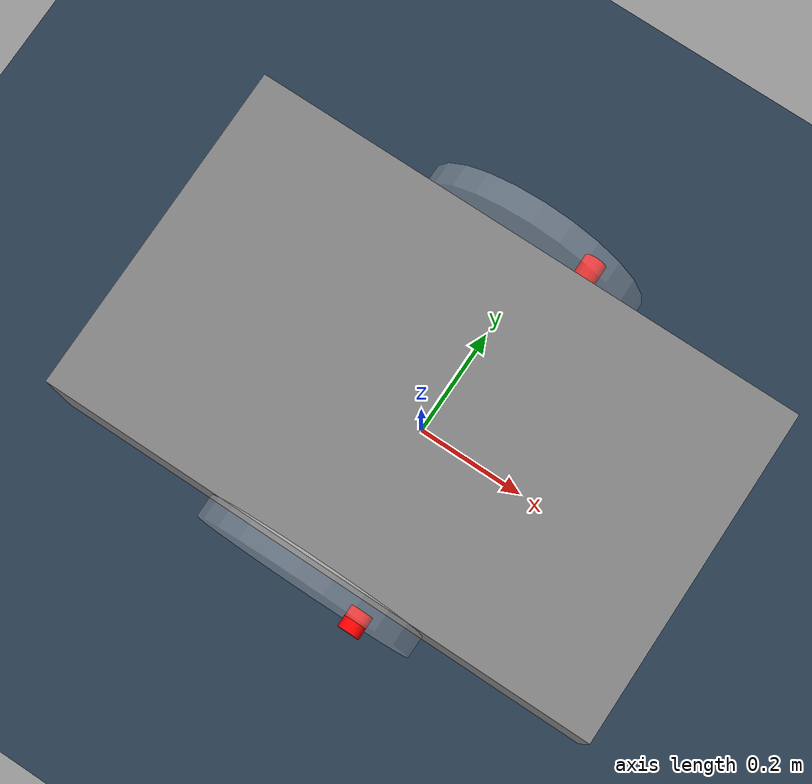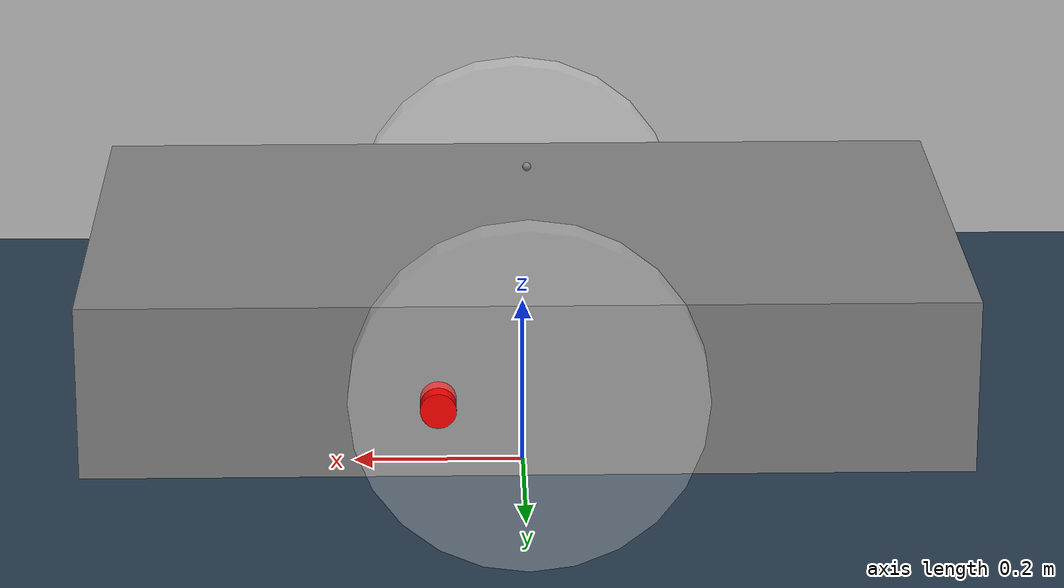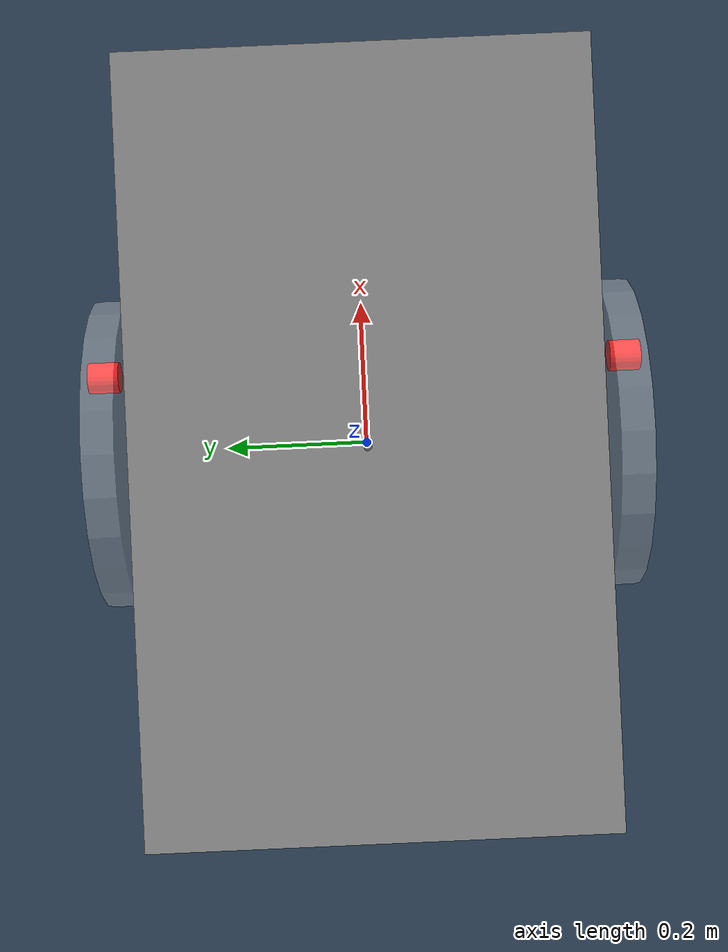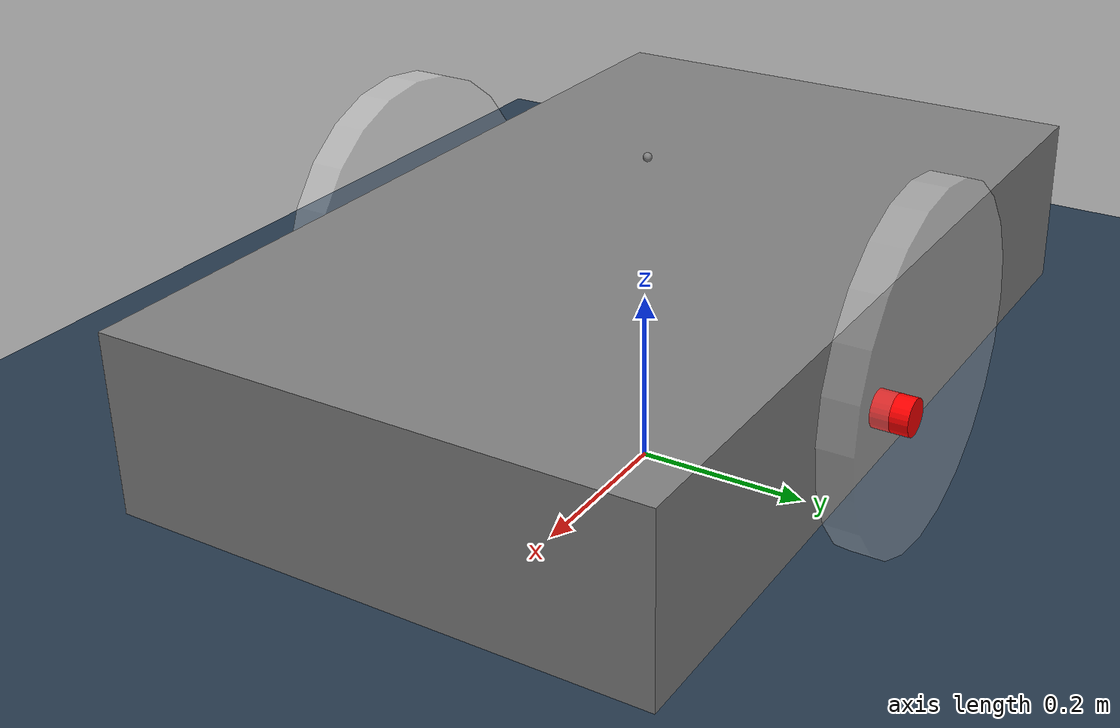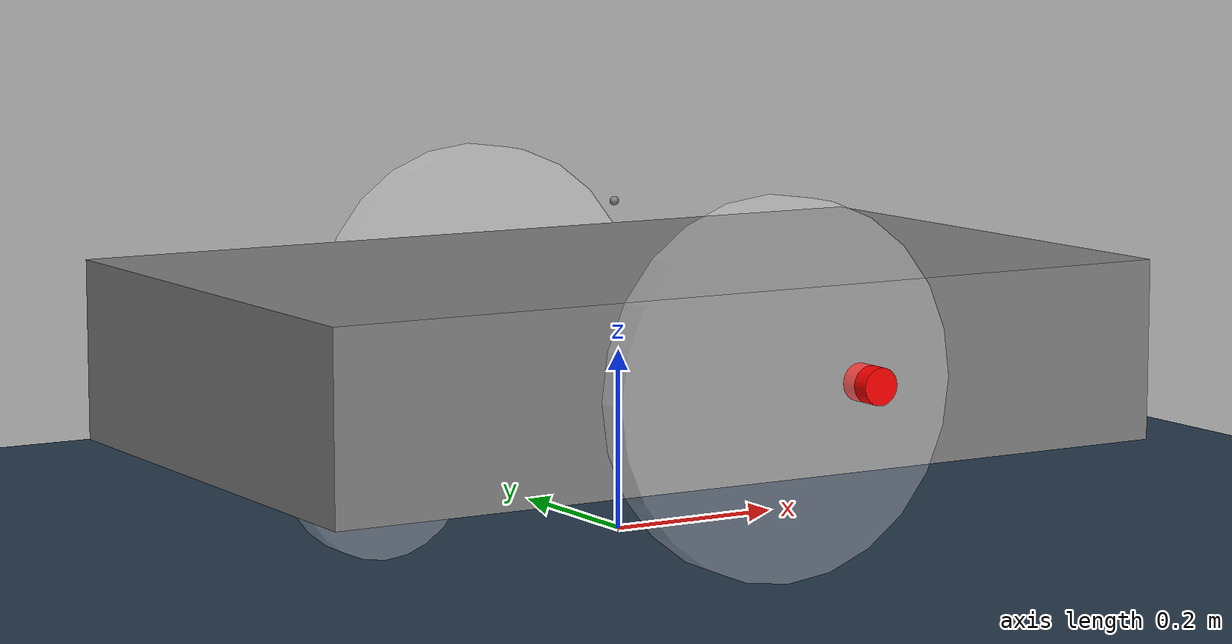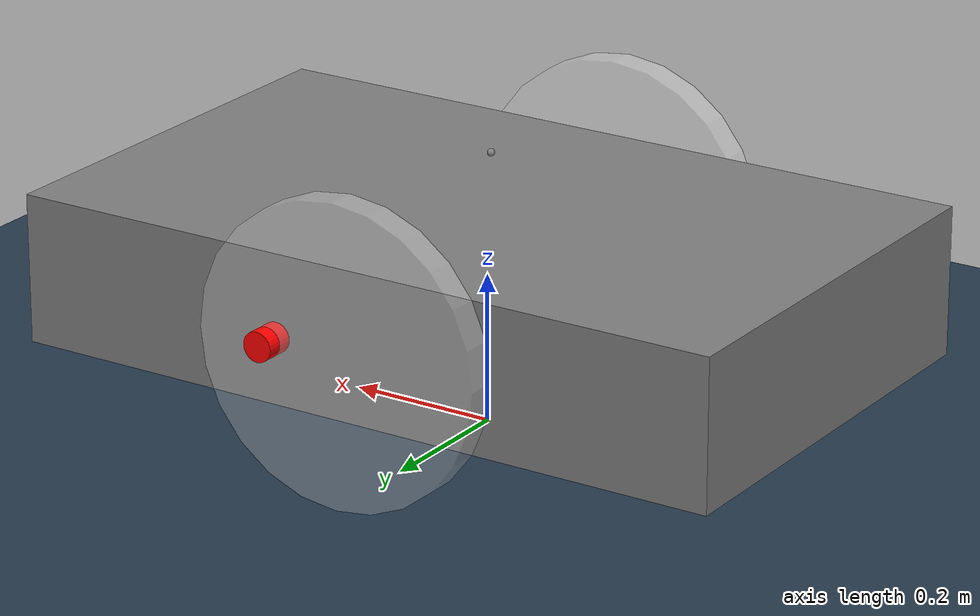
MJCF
<mujoco model="mobile robot">

  <option noslip_iterations="3"/>
  <option impratio="10"/>

  <visual>
    <rgba haze="0.15 0.25 0.35 1"/>
    <quality shadowsize="2048"/>
    <map stiffness="700" shadowscale="0.5" fogstart="10" fogend="15" zfar="40" haze="0.3"/>
  </visual>

  <asset>
    <texture type="skybox" builtin="gradient" rgb1="0.3 0.5 0.7" rgb2="0 0 0" width="512" height="512"/>
    <texture name="texplane" type="2d" builtin="checker" rgb1=".2 .3 .4" rgb2=".1 0.15 0.2"
      width="512" height="512" mark="cross" markrgb=".8 .8 .8"/>
    <material name="matplane" reflectance="0.3" texture="texplane" texrepeat="1 1" texuniform="true"/>
  </asset>

  <worldbody>
    <light directional="true" diffuse=".4 .4 .4" specular="0.1 0.1 0.1" pos="0 0 5.0" dir="0 0 -1" castshadow="false"/>
    <light directional="true" diffuse=".6 .6 .6" specular="0.2 0.2 0.2" pos="0 0 4" dir="0 0 -1"/>
    <geom name="ground" type="plane" size="0 0 1" pos="0 0 0" quat="1 0 0 0" material="matplane"/>

    <body name="mobile" pos="0.0 0.0 0.2">
      <joint name="mobile" type="free"/>
      <geom pos="0 0 0" type="box" size="0.5 0.3 0.1" mass="10"/>
      <camera name="camera" mode="fixed" fovy="60" pos="-0.005 0 .165"/>
      <site name="imu" pos="-0.005 0 .165"/>
      <body name="wheel_r" pos="0.0 -0.32 0.0" zaxis="0 1 0">
        <joint name="wheel_joint_r" type="hinge" axis="0 0 1" limited="false"/>
        <geom type="cylinder" size="0.2 0.02" rgba="1 1 1 0.3"/>
        <geom type="cylinder" pos="0.1 0 -0.02" size="0.02 0.02" rgba="1 0 0 1"/>
      </body>
      <body name="wheel_l" pos="0.0 0.32 0.0" zaxis="0 1 0">
        <joint name="wheel_joint_l" type="hinge" axis="0 0 1" limited="false"/>
        <geom type="cylinder" size="0.2 0.02" rgba="1 1 1 0.3"/>
        <geom type="cylinder" pos="0.1 0 0.02" size="0.02 0.02" rgba="1 0 0 1"/>
      </body>
      <body name="wheel_cf" pos="0.30 0.0 -0.1" zaxis="0 1 0">
        <joint name="wheel_joint_cf" type="hinge" axis="0 0 1" limited="false"/>
        <geom type="cylinder" size="0.1 0.02" condim="1" rgba="1 1 1 0.3"/>
      </body>
      <body name="wheel_cr" pos="-0.30 0.0 -0.1" zaxis="0 1 0">
        <joint name="wheel_joint_cr" type="hinge" axis="0 0 1" limited="false"/>
        <geom type="cylinder" size="0.1 0.02" condim="1" rgba="1 1 1 0.3"/>
      </body>
    </body>
  </worldbody>
  <actuator>
    <velocity kv="10" joint="wheel_joint_r" ctrllimited="true" ctrlrange="-5.0 5.0"/>
    <velocity kv="10" joint="wheel_joint_l" ctrllimited="true" ctrlrange="-5.0 5.0"/>
  </actuator>
  <sensor>
    <accelerometer name="accelerometer" site="imu" />
    <gyro name="gyro" site="imu" />
    <velocimeter name="velocimeter" site="imu" />
  </sensor>
</mujoco>
